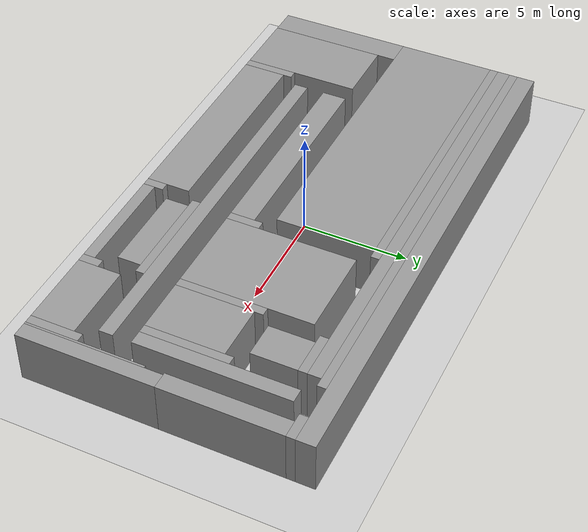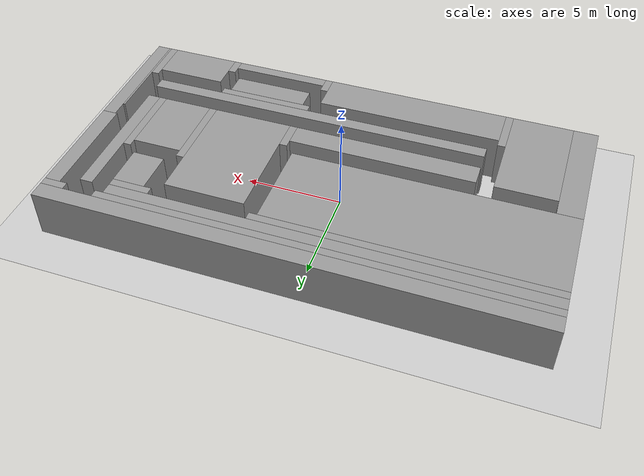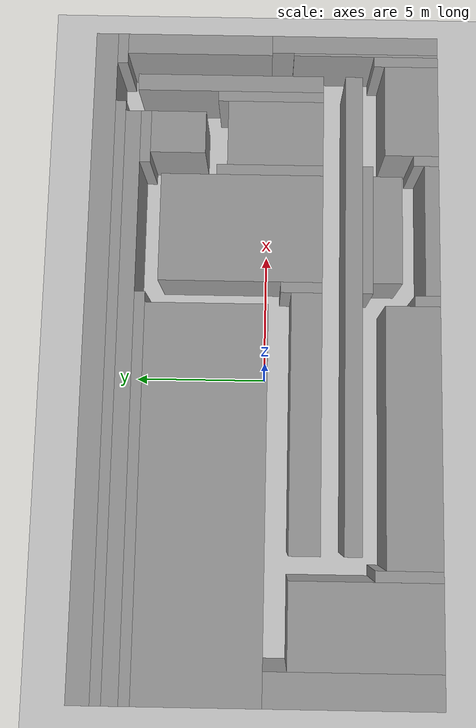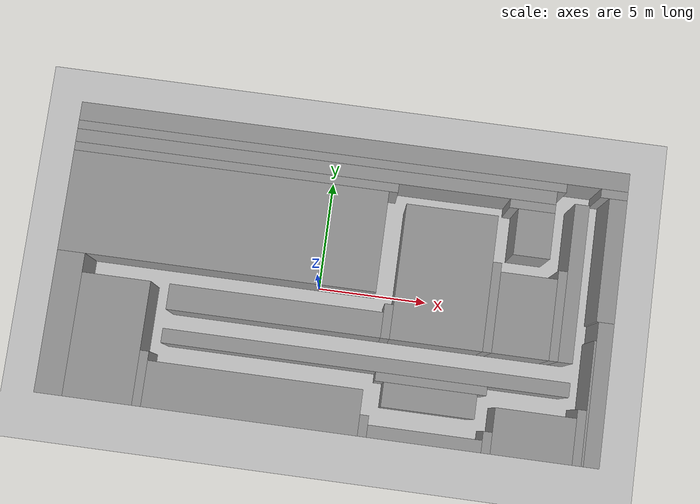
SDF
<?xml version='1.0'?>
<sdf version='1.6'>
  <world name='default'>
    <include><uri>model://ground_plane</uri></include>
    <include><uri>model://sun</uri></include>
    <physics type='ode'>
      <max_step_size>0.001</max_step_size>
      <real_time_factor>1</real_time_factor>
      <real_time_update_rate>1000</real_time_update_rate>
    </physics>
    <model name='deceptive_fork2_walls'>
      <static>1</static>
      <pose>0 0 0 0 0 0</pose>
    <link name='wall_0'>
      <collision name='wall_0_collision'>
        <pose>0.750 6.325 1.250 0 0 0</pose>
        <geometry><box><size>25.000 0.850 2.50</size></box></geometry>
      </collision>
      <visual name='wall_0_visual'>
        <pose>0.750 6.325 1.250 0 0 0</pose>
        <geometry><box><size>25.000 0.850 2.50</size></box></geometry>
        <material>
          <script>
            <uri>file://media/materials/scripts/gazebo.material</uri>
            <name>Gazebo/Grey</name>
          </script>
        </material>
      </visual>
    </link>
    <link name='wall_1'>
      <collision name='wall_1_collision'>
        <pose>-0.625 5.700 1.250 0 0 0</pose>
        <geometry><box><size>22.250 0.400 2.50</size></box></geometry>
      </collision>
      <visual name='wall_1_visual'>
        <pose>-0.625 5.700 1.250 0 0 0</pose>
        <geometry><box><size>22.250 0.400 2.50</size></box></geometry>
        <material>
          <script>
            <uri>file://media/materials/scripts/gazebo.material</uri>
            <name>Gazebo/Grey</name>
          </script>
        </material>
      </visual>
    </link>
    <link name='wall_2'>
      <collision name='wall_2_collision'>
        <pose>12.650 5.700 1.250 0 0 0</pose>
        <geometry><box><size>1.200 0.400 2.50</size></box></geometry>
      </collision>
      <visual name='wall_2_visual'>
        <pose>12.650 5.700 1.250 0 0 0</pose>
        <geometry><box><size>1.200 0.400 2.50</size></box></geometry>
        <material>
          <script>
            <uri>file://media/materials/scripts/gazebo.material</uri>
            <name>Gazebo/Grey</name>
          </script>
        </material>
      </visual>
    </link>
    <link name='wall_3'>
      <collision name='wall_3_collision'>
        <pose>-0.825 5.200 1.250 0 0 0</pose>
        <geometry><box><size>21.850 0.600 2.50</size></box></geometry>
      </collision>
      <visual name='wall_3_visual'>
        <pose>-0.825 5.200 1.250 0 0 0</pose>
        <geometry><box><size>21.850 0.600 2.50</size></box></geometry>
        <material>
          <script>
            <uri>file://media/materials/scripts/gazebo.material</uri>
            <name>Gazebo/Grey</name>
          </script>
        </material>
      </visual>
    </link>
    <link name='wall_4'>
      <collision name='wall_4_collision'>
        <pose>12.850 2.700 1.250 0 0 0</pose>
        <geometry><box><size>0.800 5.600 2.50</size></box></geometry>
      </collision>
      <visual name='wall_4_visual'>
        <pose>12.850 2.700 1.250 0 0 0</pose>
        <geometry><box><size>0.800 5.600 2.50</size></box></geometry>
        <material>
          <script>
            <uri>file://media/materials/scripts/gazebo.material</uri>
            <name>Gazebo/Grey</name>
          </script>
        </material>
      </visual>
    </link>
    <link name='wall_5'>
      <collision name='wall_5_collision'>
        <pose>11.275 1.475 1.250 0 0 0</pose>
        <geometry><box><size>0.650 7.150 2.50</size></box></geometry>
      </collision>
      <visual name='wall_5_visual'>
        <pose>11.275 1.475 1.250 0 0 0</pose>
        <geometry><box><size>0.650 7.150 2.50</size></box></geometry>
        <material>
          <script>
            <uri>file://media/materials/scripts/gazebo.material</uri>
            <name>Gazebo/Grey</name>
          </script>
        </material>
      </visual>
    </link>
    <link name='wall_6'>
      <collision name='wall_6_collision'>
        <pose>-4.375 4.700 1.250 0 0 0</pose>
        <geometry><box><size>14.750 0.400 2.50</size></box></geometry>
      </collision>
      <visual name='wall_6_visual'>
        <pose>-4.375 4.700 1.250 0 0 0</pose>
        <geometry><box><size>14.750 0.400 2.50</size></box></geometry>
        <material>
          <script>
            <uri>file://media/materials/scripts/gazebo.material</uri>
            <name>Gazebo/Grey</name>
          </script>
        </material>
      </visual>
    </link>
    <link name='wall_7'>
      <collision name='wall_7_collision'>
        <pose>9.075 4.700 1.250 0 0 0</pose>
        <geometry><box><size>2.050 0.400 2.50</size></box></geometry>
      </collision>
      <visual name='wall_7_visual'>
        <pose>9.075 4.700 1.250 0 0 0</pose>
        <geometry><box><size>2.050 0.400 2.50</size></box></geometry>
        <material>
          <script>
            <uri>file://media/materials/scripts/gazebo.material</uri>
            <name>Gazebo/Grey</name>
          </script>
        </material>
      </visual>
    </link>
    <link name='wall_8'>
      <collision name='wall_8_collision'>
        <pose>-4.575 2.200 1.250 0 0 0</pose>
        <geometry><box><size>14.350 4.600 2.50</size></box></geometry>
      </collision>
      <visual name='wall_8_visual'>
        <pose>-4.575 2.200 1.250 0 0 0</pose>
        <geometry><box><size>14.350 4.600 2.50</size></box></geometry>
        <material>
          <script>
            <uri>file://media/materials/scripts/gazebo.material</uri>
            <name>Gazebo/Grey</name>
          </script>
        </material>
      </visual>
    </link>
    <link name='wall_9'>
      <collision name='wall_9_collision'>
        <pose>9.275 3.450 1.250 0 0 0</pose>
        <geometry><box><size>1.650 2.100 2.50</size></box></geometry>
      </collision>
      <visual name='wall_9_visual'>
        <pose>9.275 3.450 1.250 0 0 0</pose>
        <geometry><box><size>1.650 2.100 2.50</size></box></geometry>
        <material>
          <script>
            <uri>file://media/materials/scripts/gazebo.material</uri>
            <name>Gazebo/Grey</name>
          </script>
        </material>
      </visual>
    </link>
    <link name='wall_10'>
      <collision name='wall_10_collision'>
        <pose>5.525 0.975 1.250 0 0 0</pose>
        <geometry><box><size>4.150 6.150 2.50</size></box></geometry>
      </collision>
      <visual name='wall_10_visual'>
        <pose>5.525 0.975 1.250 0 0 0</pose>
        <geometry><box><size>4.150 6.150 2.50</size></box></geometry>
        <material>
          <script>
            <uri>file://media/materials/scripts/gazebo.material</uri>
            <name>Gazebo/Grey</name>
          </script>
        </material>
      </visual>
    </link>
    <link name='wall_11'>
      <collision name='wall_11_collision'>
        <pose>7.800 -0.075 1.250 0 0 0</pose>
        <geometry><box><size>0.400 4.050 2.50</size></box></geometry>
      </collision>
      <visual name='wall_11_visual'>
        <pose>7.800 -0.075 1.250 0 0 0</pose>
        <geometry><box><size>0.400 4.050 2.50</size></box></geometry>
        <material>
          <script>
            <uri>file://media/materials/scripts/gazebo.material</uri>
            <name>Gazebo/Grey</name>
          </script>
        </material>
      </visual>
    </link>
    <link name='wall_12'>
      <collision name='wall_12_collision'>
        <pose>10.750 -0.075 1.250 0 0 0</pose>
        <geometry><box><size>0.400 4.050 2.50</size></box></geometry>
      </collision>
      <visual name='wall_12_visual'>
        <pose>10.750 -0.075 1.250 0 0 0</pose>
        <geometry><box><size>0.400 4.050 2.50</size></box></geometry>
        <material>
          <script>
            <uri>file://media/materials/scripts/gazebo.material</uri>
            <name>Gazebo/Grey</name>
          </script>
        </material>
      </visual>
    </link>
    <link name='wall_13'>
      <collision name='wall_13_collision'>
        <pose>9.275 -0.275 1.250 0 0 0</pose>
        <geometry><box><size>2.550 3.650 2.50</size></box></geometry>
      </collision>
      <visual name='wall_13_visual'>
        <pose>9.275 -0.275 1.250 0 0 0</pose>
        <geometry><box><size>2.550 3.650 2.50</size></box></geometry>
        <material>
          <script>
            <uri>file://media/materials/scripts/gazebo.material</uri>
            <name>Gazebo/Grey</name>
          </script>
        </material>
      </visual>
    </link>
    <link name='wall_14'>
      <collision name='wall_14_collision'>
        <pose>-11.125 -3.300 1.250 0 0 0</pose>
        <geometry><box><size>1.250 6.400 2.50</size></box></geometry>
      </collision>
      <visual name='wall_14_visual'>
        <pose>-11.125 -3.300 1.250 0 0 0</pose>
        <geometry><box><size>1.250 6.400 2.50</size></box></geometry>
        <material>
          <script>
            <uri>file://media/materials/scripts/gazebo.material</uri>
            <name>Gazebo/Grey</name>
          </script>
        </material>
      </visual>
    </link>
    <link name='wall_15'>
      <collision name='wall_15_collision'>
        <pose>12.900 -3.300 1.250 0 0 0</pose>
        <geometry><box><size>0.700 6.400 2.50</size></box></geometry>
      </collision>
      <visual name='wall_15_visual'>
        <pose>12.900 -3.300 1.250 0 0 0</pose>
        <geometry><box><size>0.700 6.400 2.50</size></box></geometry>
        <material>
          <script>
            <uri>file://media/materials/scripts/gazebo.material</uri>
            <name>Gazebo/Grey</name>
          </script>
        </material>
      </visual>
    </link>
    <link name='wall_16'>
      <collision name='wall_16_collision'>
        <pose>3.250 -1.325 1.250 0 0 0</pose>
        <geometry><box><size>0.400 1.550 2.50</size></box></geometry>
      </collision>
      <visual name='wall_16_visual'>
        <pose>3.250 -1.325 1.250 0 0 0</pose>
        <geometry><box><size>0.400 1.550 2.50</size></box></geometry>
        <material>
          <script>
            <uri>file://media/materials/scripts/gazebo.material</uri>
            <name>Gazebo/Grey</name>
          </script>
        </material>
      </visual>
    </link>
    <link name='wall_17'>
      <collision name='wall_17_collision'>
        <pose>-8.950 -3.725 1.250 0 0 0</pose>
        <geometry><box><size>3.100 5.550 2.50</size></box></geometry>
      </collision>
      <visual name='wall_17_visual'>
        <pose>-8.950 -3.725 1.250 0 0 0</pose>
        <geometry><box><size>3.100 5.550 2.50</size></box></geometry>
        <material>
          <script>
            <uri>file://media/materials/scripts/gazebo.material</uri>
            <name>Gazebo/Grey</name>
          </script>
        </material>
      </visual>
    </link>
    <link name='wall_18'>
      <collision name='wall_18_collision'>
        <pose>-1.750 -1.525 1.250 0 0 0</pose>
        <geometry><box><size>9.600 1.150 2.50</size></box></geometry>
      </collision>
      <visual name='wall_18_visual'>
        <pose>-1.750 -1.525 1.250 0 0 0</pose>
        <geometry><box><size>9.600 1.150 2.50</size></box></geometry>
        <material>
          <script>
            <uri>file://media/materials/scripts/gazebo.material</uri>
            <name>Gazebo/Grey</name>
          </script>
        </material>
      </visual>
    </link>
    <link name='wall_19'>
      <collision name='wall_19_collision'>
        <pose>12.500 -3.725 1.250 0 0 0</pose>
        <geometry><box><size>0.100 5.550 2.50</size></box></geometry>
      </collision>
      <visual name='wall_19_visual'>
        <pose>12.500 -3.725 1.250 0 0 0</pose>
        <geometry><box><size>0.100 5.550 2.50</size></box></geometry>
        <material>
          <script>
            <uri>file://media/materials/scripts/gazebo.material</uri>
            <name>Gazebo/Grey</name>
          </script>
        </material>
      </visual>
    </link>
    <link name='wall_20'>
      <collision name='wall_20_collision'>
        <pose>2.525 -3.275 1.250 0 0 0</pose>
        <geometry><box><size>18.150 0.650 2.50</size></box></geometry>
      </collision>
      <visual name='wall_20_visual'>
        <pose>2.525 -3.275 1.250 0 0 0</pose>
        <geometry><box><size>18.150 0.650 2.50</size></box></geometry>
        <material>
          <script>
            <uri>file://media/materials/scripts/gazebo.material</uri>
            <name>Gazebo/Grey</name>
          </script>
        </material>
      </visual>
    </link>
    <link name='wall_21'>
      <collision name='wall_21_collision'>
        <pose>5.525 -3.800 1.250 0 0 0</pose>
        <geometry><box><size>4.950 0.400 2.50</size></box></geometry>
      </collision>
      <visual name='wall_21_visual'>
        <pose>5.525 -3.800 1.250 0 0 0</pose>
        <geometry><box><size>4.950 0.400 2.50</size></box></geometry>
        <material>
          <script>
            <uri>file://media/materials/scripts/gazebo.material</uri>
            <name>Gazebo/Grey</name>
          </script>
        </material>
      </visual>
    </link>
    <link name='wall_22'>
      <collision name='wall_22_collision'>
        <pose>5.525 -4.550 1.250 0 0 0</pose>
        <geometry><box><size>4.150 1.100 2.50</size></box></geometry>
      </collision>
      <visual name='wall_22_visual'>
        <pose>5.525 -4.550 1.250 0 0 0</pose>
        <geometry><box><size>4.150 1.100 2.50</size></box></geometry>
        <material>
          <script>
            <uri>file://media/materials/scripts/gazebo.material</uri>
            <name>Gazebo/Grey</name>
          </script>
        </material>
      </visual>
    </link>
    <link name='wall_23'>
      <collision name='wall_23_collision'>
        <pose>-7.200 -5.275 1.250 0 0 0</pose>
        <geometry><box><size>0.400 2.450 2.50</size></box></geometry>
      </collision>
      <visual name='wall_23_visual'>
        <pose>-7.200 -5.275 1.250 0 0 0</pose>
        <geometry><box><size>0.400 2.450 2.50</size></box></geometry>
        <material>
          <script>
            <uri>file://media/materials/scripts/gazebo.material</uri>
            <name>Gazebo/Grey</name>
          </script>
        </material>
      </visual>
    </link>
    <link name='wall_24'>
      <collision name='wall_24_collision'>
        <pose>12.250 -5.275 1.250 0 0 0</pose>
        <geometry><box><size>0.400 2.450 2.50</size></box></geometry>
      </collision>
      <visual name='wall_24_visual'>
        <pose>12.250 -5.275 1.250 0 0 0</pose>
        <geometry><box><size>0.400 2.450 2.50</size></box></geometry>
        <material>
          <script>
            <uri>file://media/materials/scripts/gazebo.material</uri>
            <name>Gazebo/Grey</name>
          </script>
        </material>
      </visual>
    </link>
    <link name='wall_25'>
      <collision name='wall_25_collision'>
        <pose>-2.200 -5.475 1.250 0 0 0</pose>
        <geometry><box><size>9.600 2.050 2.50</size></box></geometry>
      </collision>
      <visual name='wall_25_visual'>
        <pose>-2.200 -5.475 1.250 0 0 0</pose>
        <geometry><box><size>9.600 2.050 2.50</size></box></geometry>
        <material>
          <script>
            <uri>file://media/materials/scripts/gazebo.material</uri>
            <name>Gazebo/Grey</name>
          </script>
        </material>
      </visual>
    </link>
    <link name='wall_26'>
      <collision name='wall_26_collision'>
        <pose>10.250 -5.475 1.250 0 0 0</pose>
        <geometry><box><size>3.600 2.050 2.50</size></box></geometry>
      </collision>
      <visual name='wall_26_visual'>
        <pose>10.250 -5.475 1.250 0 0 0</pose>
        <geometry><box><size>3.600 2.050 2.50</size></box></geometry>
        <material>
          <script>
            <uri>file://media/materials/scripts/gazebo.material</uri>
            <name>Gazebo/Grey</name>
          </script>
        </material>
      </visual>
    </link>
    <link name='wall_27'>
      <collision name='wall_27_collision'>
        <pose>2.800 -6.025 1.250 0 0 0</pose>
        <geometry><box><size>0.400 0.950 2.50</size></box></geometry>
      </collision>
      <visual name='wall_27_visual'>
        <pose>2.800 -6.025 1.250 0 0 0</pose>
        <geometry><box><size>0.400 0.950 2.50</size></box></geometry>
        <material>
          <script>
            <uri>file://media/materials/scripts/gazebo.material</uri>
            <name>Gazebo/Grey</name>
          </script>
        </material>
      </visual>
    </link>
    <link name='wall_28'>
      <collision name='wall_28_collision'>
        <pose>8.250 -6.025 1.250 0 0 0</pose>
        <geometry><box><size>0.400 0.950 2.50</size></box></geometry>
      </collision>
      <visual name='wall_28_visual'>
        <pose>8.250 -6.025 1.250 0 0 0</pose>
        <geometry><box><size>0.400 0.950 2.50</size></box></geometry>
        <material>
          <script>
            <uri>file://media/materials/scripts/gazebo.material</uri>
            <name>Gazebo/Grey</name>
          </script>
        </material>
      </visual>
    </link>
    <link name='wall_29'>
      <collision name='wall_29_collision'>
        <pose>5.525 -6.225 1.250 0 0 0</pose>
        <geometry><box><size>5.050 0.550 2.50</size></box></geometry>
      </collision>
      <visual name='wall_29_visual'>
        <pose>5.525 -6.225 1.250 0 0 0</pose>
        <geometry><box><size>5.050 0.550 2.50</size></box></geometry>
        <material>
          <script>
            <uri>file://media/materials/scripts/gazebo.material</uri>
            <name>Gazebo/Grey</name>
          </script>
        </material>
      </visual>
    </link>
    </model>
  </world>
</sdf>
